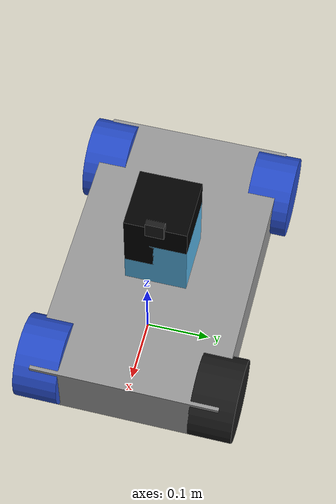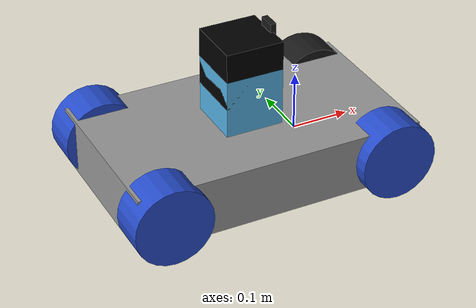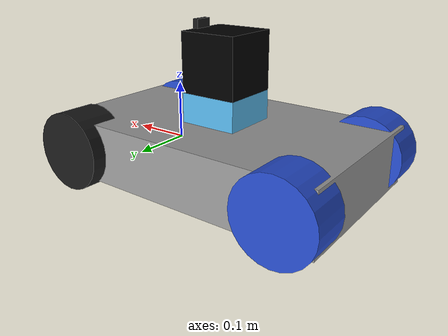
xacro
<?xml version="1.0"?>
<robot xmlns:xacro="http://www.ros.org/wiki/xacro" name="urdf_robot">

  <xacro:macro name="inertial_sphere" params="mass radius *origin">

    <inertial>
      <xacro:insert_block name="origin"/>
      <mass value="${mass}" />
      <inertia ixx="${(2/5) * mass * (radius*radius)}" ixy="0.0" ixz="0.0"
              iyy="${(2/5) * mass * (radius*radius)}" iyz="0.0"
              izz="${(2/5) * mass * (radius*radius)}" />
    </inertial>
  </xacro:macro>

  <xacro:macro name="inertial_box" params="mass x y z *origin">
    <inertial>
      <xacro:insert_block name="origin"/>
      <mass value="${mass}" />
      <inertia ixx="${(1/12) * mass * (y*y+z*z)}" ixy="0.0" ixz="0.0"
              iyy="${(1/12) * mass * (x*x+z*z)}" iyz="0.0"
              izz="${(1/12) * mass * (x*x+y*y)}" />
    </inertial>
  </xacro:macro>

  <xacro:macro name="inertial_cylinder" params="mass length radius *origin">
    <inertial>
      <xacro:insert_block name="origin"/>
      <mass value="${mass}" />
      <inertia ixx="${(1/12) * mass * (3*radius*radius + length*length)}" ixy="0.0" ixz="0.0"
              iyy="${(1/12) * mass * (3*radius*radius + length*length)}" iyz="0.0"
              izz="${(1/2) * mass * (radius*radius)}" />
    </inertial>
  </xacro:macro>

    <xacro:property name="wheel_radius" value="0.067"/>
    <xacro:property name="wheel_thickness" value="0.07"/>
    <xacro:property name="wheel_mass" value="0.05"/>
    <xacro:property name="wheel_offset_x" value="0.2"/>
    <xacro:property name="wheel_offset_y" value="0.14"/>
    <xacro:property name="wheel_offset_z" value="0.01"/>

  <link name="base_footprint">

  </link>

  <material name="grey">
    <color rgba="0.8 0.8 0.8 0.8"/>
  </material>
  <material name="black">
    <color rgba="0.1 0.1 0.1 1"/>
  </material>

  <link name="base_link">
    <visual>
      <origin xyz="0 0 0" rpy="0 0 0"/>
      <geometry>
        <box size="0.5 0.3 0.1"/>
      </geometry>
      <material name="gray"/>
    </visual>
    <collision>
      <origin xyz="0.0 0.0 0.0"/>
      <geometry>
        <box size="0.5 0.43 0.02"/>
      </geometry>
    </collision>
    <inertial>
      <mass value="5"/>
      <origin xyz="0.0 0.0 0.0" rpy="0.0 0.0 0.0"/>
      <inertia ixx="0.01" ixy="0.0" ixz="0.0" iyy="0.01" iyz="0.0" izz="0.01"/>
    </inertial>
  </link>

  <joint name="base_joint" type="fixed">
    <parent link="base_footprint"/>
    <child link="base_link"/>
    <origin xyz="-0.1 0.0 0.0" rpy="0.0 0.0 0.0"/>
  </joint>

  <!-- LEFT FRONT WHEEL -->
  <joint name="left_front_wheel_joint" type="continuous">
    <parent link="base_link"/>
    <child link="left_front_wheel"/>
    <origin xyz="${wheel_offset_x} ${wheel_offset_y} 0" rpy="-${pi/2} 0 0" />
    <axis xyz="0 0 1"/>
  </joint>

  <link name="left_front_wheel">
    <visual>
      <geometry>
        <cylinder radius="${wheel_radius}" length="${wheel_thickness}"/>
      </geometry>
      <material name="black"/>
    </visual>
    <collision>
      <geometry>
        <sphere radius="${wheel_radius}"/>
      </geometry>
    </collision>
    <xacro:inertial_cylinder mass="${wheel_mass}" length="${wheel_thickness}" radius="${wheel_radius}">
      <origin xyz="0 0 0" rpy="0 0 0"/>
    </xacro:inertial_cylinder>
  </link>

  <gazebo reference="left_front_wheel">
    <material>Gazebo/Black</material>
  </gazebo>

  <!-- RIGHT FRONT WHEEL -->
  <joint name="right_front_wheel_joint" type="continuous">
    <parent link="base_link"/>
    <child link="right_front_wheel"/>
    <origin xyz="${wheel_offset_x} ${-wheel_offset_y} 0" rpy="${pi/2} 0 0" />
    <axis xyz="0 0 -1"/>
  </joint>

  <link name="right_front_wheel">
    <visual>
      <geometry>
        <cylinder radius="${wheel_radius}" length="${wheel_thickness}"/>
      </geometry>
      <material name="blue"/>
    </visual>
    <collision>
      <geometry>
        <sphere radius="${wheel_radius}"/>
      </geometry>
    </collision>
    <xacro:inertial_cylinder mass="${wheel_mass}" length="${wheel_thickness}" radius="${wheel_radius}">
      <origin xyz="0 0 0" rpy="0 0 0"/>
    </xacro:inertial_cylinder>
  </link>

  <gazebo reference="right_front_wheel">
    <material>Gazebo/Blue</material>
  </gazebo>

  <!-- LEFT REAR WHEEL -->
  <joint name="left_rear_wheel_joint" type="continuous">
    <parent link="base_link"/>
    <child link="left_rear_wheel"/>
    <origin xyz="${-wheel_offset_x} ${wheel_offset_y} 0" rpy="-${pi/2} 0 0" />
    <axis xyz="0 0 1"/>
  </joint>

  <link name="left_rear_wheel">
    <visual>
      <geometry>
        <cylinder radius="${wheel_radius}" length="${wheel_thickness}"/>
      </geometry>
      <material name="blue"/>
    </visual>
    <collision>
      <geometry>
        <sphere radius="${wheel_radius}"/>
      </geometry>
    </collision>
    <xacro:inertial_cylinder mass="${wheel_mass}" length="${wheel_thickness}" radius="${wheel_radius}">
      <origin xyz="0 0 0" rpy="0 0 0"/>
    </xacro:inertial_cylinder>
  </link>

  <gazebo reference="left_rear_wheel">
    <material>Gazebo/Blue</material>
  </gazebo>

  <!-- RIGHT REAR WHEEL -->
  <joint name="right_rear_wheel_joint" type="continuous">
    <parent link="base_link"/>
    <child link="right_rear_wheel"/>
    <origin xyz="${-wheel_offset_x} ${-wheel_offset_y} 0" rpy="-${pi/2} 0 0" />
    <axis xyz="0 0 1"/>
  </joint>

  <link name="right_rear_wheel">
    <visual>
      <geometry>
        <cylinder radius="${wheel_radius}" length="${wheel_thickness}"/>
      </geometry>
      <material name="blue"/>
    </visual>
    <collision>
      <geometry>
        <sphere radius="${wheel_radius}"/>
      </geometry>
    </collision>
    <xacro:inertial_cylinder mass="${wheel_mass}" length="${wheel_thickness}" radius="${wheel_radius}">
      <origin xyz="0 0 0" rpy="0 0 0"/>
    </xacro:inertial_cylinder>
  </link>

  <gazebo reference="right_rear_wheel">
    <material>Gazebo/Blue</material>
  </gazebo>

<link name="hokuyo_link">
  <origin xyz="0 0 0.15" rpy="0 0 0"/>
  <visual>
    <geometry>
      <box size="0.1 0.1 0.1"/>
    </geometry>
    <material name="Black">
      <color rgba="0.0 0.0 0.0 1.0"/>
    </material>
  </visual>
</link>

<joint name="hokuyo_joint" type="fixed">
  <parent link="base_link"/>
  <child link="hokuyo_link"/>
  <origin xyz="0.0 0.0 0.15" rpy="0 0 0"/>
</joint>

<!-- Add a LIDAR sensor -->
<gazebo reference="hokuyo_link">
  <sensor type="ray" name="hokuyo">
    <update_rate>30</update_rate>
    <ray>
      <scan>
        <horizontal>
          <samples>720</samples>
          <resolution>1</resolution>
          <min_angle>-1.5708</min_angle>
          <max_angle>1.5708</max_angle>
        </horizontal>
      </scan>
      <range>
        <min>0.0</min>
        <max>30.0</max>
      </range>
    </ray>
    <plugin name="gazebo_ros_laser_controller" filename="libgazebo_ros_laser.so">
      <robotNamespace>/</robotNamespace>
      <frameName>hokuyo_link</frameName>
      <topicName>/scan</topicName>
    </plugin>
  </sensor>
</gazebo>

  <!-- CAMERA -->
  <joint name="camera_joint" type="fixed">
    <parent link="base_link"/>
    <child link="camera_link"/>
    <origin xyz="0.05 0.0 0.2" rpy="0.0 0.0 0.0"/> <!-- Adjusted height -->
  </joint>

  <link name="camera_link">
    <visual>
      <origin xyz="0.0 0.0 0.0" rpy="0.0 0.0 0.0"/>
      <geometry>
        <box size="0.01 0.03 0.03"/>
      </geometry>
      <material name="black"/>
    </visual>
  </link>

  <joint name="camera_optical_joint" type="fixed">
    <parent link="camera_link"/>
    <child link="camera_link_optical"/>
    <origin xyz="0.0 0.0 0.0" rpy="-1.57 0.0 -1.57"/>
  </joint>

  <link name="camera_link_optical"></link>

    <gazebo reference="camera_link">
    <material>Gazebo/Black</material>
  </gazebo>

  <gazebo>
    <plugin name="skid_steer_drive_controller" filename="libgazebo_ros_skid_steer_drive.so">
      <updateRate>10.0</updateRate>
      <robotNamespace>/</robotNamespace>
      <leftFrontJoint>left_front_wheel_joint</leftFrontJoint>
      <rightFrontJoint>right_front_wheel_joint</rightFrontJoint>
      <leftRearJoint>left_rear_wheel_joint</leftRearJoint>
      <rightRearJoint>right_rear_wheel_joint</rightRearJoint>
      <wheelSeparation>0.37</wheelSeparation>
      <wheelDiameter>0.134</wheelDiameter>
      <robotBaseFrame>base_footprint</robotBaseFrame>
      <torque>25</torque>
      <topicName>cmd_vel</topicName>
      <broadcastTF>true</broadcastTF>
      <odometryTopic>odom</odometryTopic>
      <odometryFrame>odom</odometryFrame>
      <commandTopic>cmd_vel</commandTopic>
      <covariance_x>0.001000</covariance_x>
      <covariance_y>0.001000</covariance_y>
      <covariance_yaw>0.100000</covariance_yaw>
    </plugin>
  </gazebo>

  <gazebo reference="laser_frame">
    <sensor type="gpu_ray" name="head_hokuyo_sensor">
      <pose>0 0 0 0 0 0</pose>
      <visualize>false</visualize>
      <update_rate>10</update_rate>
      <ray>
        <scan>
          <horizontal>

            <samples>360</samples>
            <resolution>1</resolution>
            <min_angle>-3.14</min_angle>
            <max_angle>3.14</max_angle>
          </horizontal>
        </scan>
        <range>
          <min>0.3</min>
          <max>12</max>
          <resolution>0.01</resolution>
        </range>
        <noise>
          <type>gaussian</type>
          <mean>0.0</mean>
          <stddev>0.01</stddev>
        </noise>
      </ray>
      <plugin name="gazebo_ros_head_hokuyo_controller" filename="libgazebo_ros_gpu_laser.so">
        <topicName>/scan</topicName>
        <frameName>laser_frame</frameName>
      </plugin>
    </sensor>
  </gazebo>

  <gazebo reference="camera_link">
    <sensor type="camera" name="camera">
      <pose>0 0 0 0 0 0</pose>
      <visualize>true</visualize>
      <cameraName>camera</cameraName>
      <update_rate>10</update_rate>
      <camera>
      <image width="640" height="480" hfov="1.5708" format="RGB8" near="0.01" far="50.0" fps="30.0"/>
      </camera>
      <plugin name="camera_controller" filename="libgazebo_ros_camera.so">
        <frameName>camera_link_optical</frameName>
      </plugin>
    </sensor>
  </gazebo>
 <!-- IMU Link -->
  <link name="imu_link">
    <inertial>
      <mass value="0.1"/>
      <origin xyz="0 0 0" rpy="0 0 0"/>
      <inertia ixx="0.01" ixy="0.0" ixz="0.0" iyy="0.01" iyz="0.0" izz="0.01"/>
    </inertial>
    <visual>
      <geometry>
        <box size="0.1 0.1 0.1"/>
      </geometry>
    </visual>
    <collision>
      <geometry>
        <box size="0.1 0.1 0.1"/>
      </geometry>
    </collision>
  </link>

  <!-- Joint -->
  <joint name="imu_joint" type="fixed">
    <parent link="base_link"/>
    <child link="imu_link"/>
    <origin xyz="0 0 0.1" rpy="0 0 0"/>
  </joint>

  <!-- Gazebo Plugin -->
  <gazebo>
    <plugin name="imu_plugin" filename="libgazebo_ros_imu.so">
      <alwaysOn>true</alwaysOn>
      <updateRate>50.0</updateRate>
      <bodyName>imu_link</bodyName>
      <topicName>imu_data</topicName>
      <gaussianNoise>0.01</gaussianNoise>
    </plugin>
  </gazebo>
</robot>
